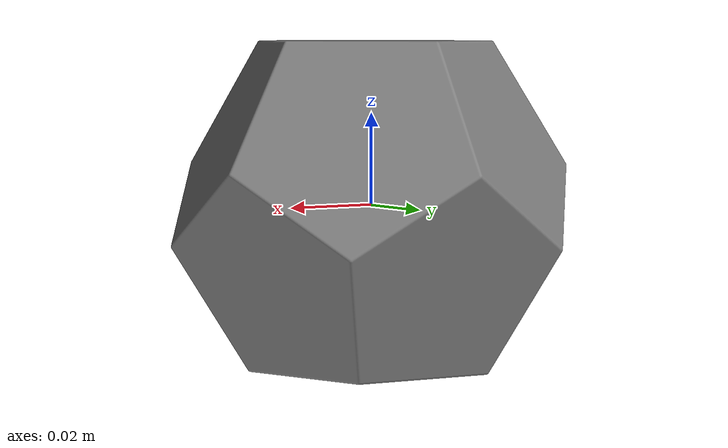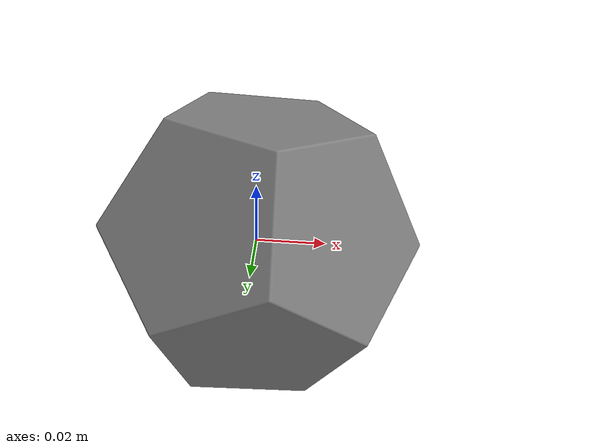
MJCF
<mujoco model="dodecahedron">
    <compiler angle="radian"/>
    <default>
        <geom type="mesh" condim="3" margin="0.005" contype="1" conaffinity="1"/>
    </default>
    <asset>
        <mesh name="dodecahedron" file="dodecahedron.stl" scale="0.0011 0.0011 0.0011"/>
    </asset>
    <worldbody>
        <body name="dodecahedron">
            <geom mesh="dodecahedron" density="400"/>
        </body>
    </worldbody>
</mujoco>
